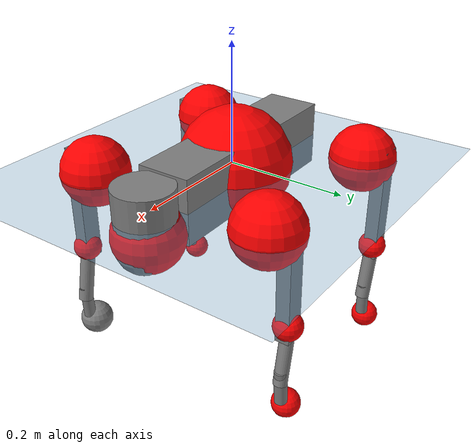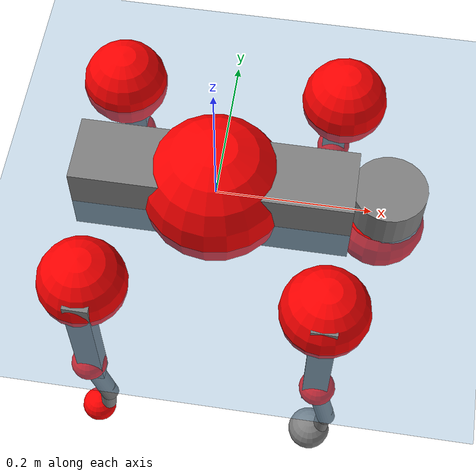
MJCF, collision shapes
<mujoco model="go2">
  <compiler angle="radian" assetdir="assets" balanceinertia="true" inertiafromgeom="false"/>

  <option timestep="0.005" density="1.2" viscosity="2e-05"/>

  <size nkey="1"/>

  <visual>
    <quality shadowsize="8192"/>
    <map shadowclip="0.5"/>
  </visual>

  <default>
    <default class="/">
      <geom contype="0" conaffinity="0" group="1" solref="-1000 -80"/>
      <site size="0.01 0.005 0.005" group="5"/>
      <general forcelimited="true" biastype="affine" gainprm="20" biasprm="0 -20 -0.5"/>
      <default class="go2">
        <joint armature="0.01" damping="0.01" frictionloss="0.2"/>
        <geom condim="1" margin="0.001"/>
        <default class="visual">
          <geom type="mesh" group="2"/>
        </default>
        <default class="collision">
          <geom group="3"/>
          <default class="foot">
            <geom size="0.022 0 0" condim="6" priority="1" friction="0.8 0.02 0.01" solimp="0.015 1 0.022"/>
          </default>
        </default>
        <default class="reward_collision_sphere">
          <geom group="5" rgba="1 0 0 1"/>
        </default>
      </default>
    </default>
  </default>

  <asset>
    <texture type="skybox" colorspace="auto" name="//unnamed_texture_0" builtin="gradient" rgb1="0.95 0.95 0.95" rgb2="0.95 0.95 0.95" width="100" height="600"/>
    <texture type="2d" colorspace="auto" name="texplane" builtin="checker" rgb1="0.345 0.575 0.748" rgb2="0.345 0.575 0.748" markrgb="1 1 1" width="512" height="512"/>
    <material name="MatPlane" class="/" texture="texplane" texuniform="true" texrepeat="2 2" specular="0.9"/>
    <material name="metal" class="/" rgba="0.9 0.95 0.95 1"/>
    <material name="black" class="/" rgba="0 0 0 1"/>
    <material name="white" class="/"/>
    <material name="gray" class="/" rgba="0.671705 0.692426 0.77427 1"/>
    <mesh name="base_0" class="/" file="base_0.obj"/>
    <mesh name="base_1" class="/" file="base_1.obj"/>
    <mesh name="base_2" class="/" file="base_2.obj"/>
    <mesh name="base_3" class="/" file="base_3.obj"/>
    <mesh name="base_4" class="/" file="base_4.obj"/>
    <mesh name="hip_0" class="/" file="hip_0.obj"/>
    <mesh name="hip_1" class="/" file="hip_1.obj"/>
    <mesh name="thigh_0" class="/" file="thigh_0.obj"/>
    <mesh name="thigh_1" class="/" file="thigh_1.obj"/>
    <mesh name="thigh_mirror_0" class="/" file="thigh_mirror_0.obj"/>
    <mesh name="thigh_mirror_1" class="/" file="thigh_mirror_1.obj"/>
    <mesh name="calf_0" class="/" file="calf_0.obj"/>
    <mesh name="calf_1" class="/" file="calf_1.obj"/>
    <mesh name="calf_mirror_0" class="/" file="calf_mirror_0.obj"/>
    <mesh name="calf_mirror_1" class="/" file="calf_mirror_1.obj"/>
    <mesh name="foot" class="/" file="foot.obj"/>
  </asset>

  <worldbody>
    <geom name="floor" class="/" size="100 100 0.125" type="plane" group="0" material="MatPlane"/>
    <light name="toplight_shadow" class="/" pos="0 0 5" dir="0.0990148 0.0990148 -0.990148" type="directional" ambient="0.04 0.04 0.04" diffuse="0.55 0.55 0.55" specular="0.12 0.12 0.12"/>
    <light name="toplight_fill" class="/" pos="0 0 5" dir="0.0990148 0.0990148 -0.990148" type="directional" castshadow="false" ambient="0.04 0.04 0.04" diffuse="0.3 0.3 0.3" specular="0.08 0.08 0.08"/>
    <body name="trunk" childclass="go2" pos="-0.00153798 0.00490462 0.000702485" quat="0.999997 -0.000352324 0.00206437 0.00133217">
      <inertial pos="0.0197576 0.00976784 -0.00917399" quat="-0.000549174 0.701026 -0.00342165 0.713127" mass="6.12369" diaginertia="0.0362152 0.525373 0.00457425"/>
      <joint name="//unnamed_joint_0" type="free" armature="0" damping="0" frictionloss="0"/>
      <geom name="//unnamed_geom_1" class="visual" material="black" mesh="base_0"/>
      <geom name="//unnamed_geom_2" class="visual" material="black" mesh="base_1"/>
      <geom name="//unnamed_geom_3" class="visual" material="black" mesh="base_2"/>
      <geom name="//unnamed_geom_4" class="visual" material="white" mesh="base_3"/>
      <geom name="//unnamed_geom_5" class="visual" material="gray" mesh="base_4"/>
      <geom name="trunk_1" class="collision" size="0.178677 0.044408 0.0541445" type="box"/>
      <geom name="trunk_2" class="collision" size="0.0474952 0.0427457" pos="0.21932 0 0.00712008" type="cylinder"/>
      <geom name="trunk_3" class="collision" size="0.0446455" pos="0.225476 0 -0.0427205"/>
      <geom name="//unnamed_geom_9" class="reward_collision_sphere" size="0.0949904"/>
      <geom name="//unnamed_geom_10" class="reward_collision_sphere" size="0.0569942" pos="0.215472 0 -0.0320404"/>
      <site name="imu" pos="-0.0281094 0.00953661 0.0396748" size="0.00949904"/>
      <camera name="track" pos="0 -2.73632 0" quat="0.707107 0.707107 0 0" mode="trackcom"/>
      <camera name="ego_camera" pos="0.240097 0 0.0320404" quat="-0.5 -0.5 0.5 0.5"/>
      <body name="FL_hip" pos="0.150561 0.0664407 0.00162833" quat="0.999999 0.000827728 -0.000580405 0.000319396">
        <inertial pos="-0.00482217 0.00969414 0.00256575" quat="0.532886 0.466613 0.520536 0.47681" mass="0.598024" diaginertia="0.000234552 0.00296726 8.63243e-05"/>
        <joint name="FL_hip_joint" pos="0 0 0" axis="0.999814 -0.0160051 0.0107309" range="-0.982733 1.02707" armature="0.00904834" damping="0.0226223" frictionloss="0.178733"/>
        <geom name="//unnamed_geom_11" class="visual" material="metal" mesh="hip_0"/>
        <geom name="//unnamed_geom_12" class="visual" material="gray" mesh="hip_1"/>
        <geom name="//unnamed_geom_13" class="collision" size="0.0436956 0.0189981" pos="0 0.109453 0" quat="0.707107 0.707107 0 0" type="cylinder"/>
        <geom name="//unnamed_geom_14" class="reward_collision_sphere" size="0.0569942" pos="0 0.0957711 0"/>
        <body name="FL_thigh" pos="-0.00673164 0.127437 7.79422e-05" quat="0.999987 0.00504596 0.00016257 0.000778784">
          <inertial pos="-0.00498651 -0.0407525 -0.024389" quat="0.825676 0.085514 -0.0259655 0.557021" mass="0.961486" diaginertia="0.00179136 0.0250093 0.000164352"/>
          <joint name="FL_thigh_joint" pos="0 0 0" axis="0.00336089 0.99966 0.0258572" range="-1.46874 3.66587" armature="0.00486727" damping="0.0166325" frictionloss="0.224121"/>
          <geom name="//unnamed_geom_15" class="visual" material="metal" mesh="thigh_0"/>
          <geom name="//unnamed_geom_16" class="visual" material="gray" mesh="thigh_1"/>
          <geom name="//unnamed_geom_17" class="collision" size="0.101165 0.0116363 0.0161484" pos="0 0 -0.0758289" quat="0.707107 0 0.707107 0" type="box"/>
          <body name="FL_calf" pos="0.000301012 0.00079996 -0.154974" quat="1 -0.000701733 0.000264927 -0.000563637">
            <inertial pos="0.0128196 0.00353401 -0.0939795" quat="0.707496 0.000397336 -4.37971e-05 0.706717" mass="0.21537" diaginertia="0.000422117 0.00659854 1.00475e-05"/>
            <joint name="FL_calf_joint" pos="0 0 0" axis="0.0109801 0.999931 0.00414345" range="-2.92858 -0.969146" armature="0.0113286" damping="0.0440458" frictionloss="0.181237"/>
            <geom name="//unnamed_geom_18" class="visual" material="gray" mesh="calf_0"/>
            <geom name="//unnamed_geom_19" class="visual" material="black" mesh="calf_1"/>
            <geom name="FL_calf0" class="collision" size="0.0113988 0.0569942" pos="0.00615635 0 -0.0427205" quat="0.994493 0 -0.104807 0" type="cylinder"/>
            <geom name="//unnamed_geom_21" class="collision" size="0.0104489 0.0308719" pos="0.0153909 0 -0.105377" quat="0.999688 0 0.0249974 0" type="cylinder"/>
            <geom name="//unnamed_geom_22" class="visual" pos="0 0 -0.151658" quat="1 0 0 0" material="black" mesh="foot"/>
            <geom name="FL_foot" class="foot" size="0.0229761" pos="-0.00153909 0 -0.151658"/>
            <geom name="//unnamed_geom_24" class="reward_collision_sphere" size="0.0237476"/>
            <geom name="//unnamed_geom_25" class="reward_collision_sphere" size="0.0237476" pos="-0.00153909 0 -0.151658"/>
            <site name="FL_foot" class="foot" pos="-0.00153909 0 -0.151658" size="0.00949904"/>
          </body>
        </body>
      </body>
      <body name="FR_hip" pos="0.158803 -0.0608124 0.00386163" quat="1 -0.000335725 -0.000306604 1.71773e-05">
        <inertial pos="-0.00540285 -0.00421845 0.0017331" quat="0.521012 0.47718 0.515327 0.485061" mass="0.60454" diaginertia="0.000259921 0.00285422 8.83156e-05"/>
        <joint name="FR_hip_joint" pos="0 0 0" axis="0.999817 0.00153261 0.0190803" stiffness="0.0541434" range="-1.01524 0.89827" armature="0.0104417" damping="0.0274905" frictionloss="0.186414"/>
        <geom name="//unnamed_geom_26" class="visual" pos="0 5.71611e-09 2.45176e-07" quat="4.63268e-05 1 0 0" material="metal" mesh="hip_0"/>
        <geom name="//unnamed_geom_27" class="visual" pos="0 9.2665e-09 -6.06414e-07" quat="4.63268e-05 1 0 0" material="gray" mesh="hip_1"/>
        <geom name="//unnamed_geom_28" class="collision" size="0.0436956 0.0189981" pos="0 -0.109453 0" quat="0.707107 0.707107 0 0" type="cylinder"/>
        <geom name="//unnamed_geom_29" class="reward_collision_sphere" size="0.0569942" pos="0 -0.0957711 0"/>
        <body name="FR_thigh" pos="0.0016675 -0.130809 0.00879241" quat="1 -0.00015736 0.000366975 3.14468e-05">
          <inertial pos="-0.00591516 0.0351101 -0.0320282" quat="0.548724 -0.0148827 0.0846317 0.831576" mass="0.982262" diaginertia="0.00170533 0.0279113 0.00016029"/>
          <joint name="FR_thigh_joint" pos="0 0 0" axis="-0.000716848 -0.999943 -0.0106371" range="-3.52844 1.54653" armature="0.01299" damping="0" frictionloss="0.231016"/>
          <geom name="//unnamed_geom_30" class="visual" material="metal" mesh="thigh_mirror_0"/>
          <geom name="//unnamed_geom_31" class="visual" material="gray" mesh="thigh_mirror_1"/>
          <geom name="//unnamed_geom_32" class="collision" size="0.101165 0.0116363 0.0161484" pos="0 0 -0.0758289" quat="0.707107 0 0.707107 0" type="box"/>
          <body name="FR_calf" pos="0.00259802 -0.000320691 -0.159575" quat="1 -7.90441e-05 0.000203462 -0.000173021">
            <inertial pos="0.00921333 -0.00391374 -0.0994736" quat="0.701538 0.000563644 -0.00671459 0.7126" mass="0.181373" diaginertia="0.000358654 0.00571865 8.93687e-06"/>
            <joint name="FR_calf_joint" pos="0 0 0" axis="-0.00353666 -0.99993 -0.0113232" stiffness="0.0026062" range="0.819108 2.71762" armature="0.00897195" damping="0.0535394" frictionloss="0.20325"/>
            <geom name="//unnamed_geom_33" class="visual" material="gray" mesh="calf_mirror_0"/>
            <geom name="//unnamed_geom_34" class="visual" material="black" mesh="calf_mirror_1"/>
            <geom name="FR_calf0" class="collision" size="0.0123487 0.0569942" pos="0.00769543 0 -0.0427205" quat="0.995004 0 -0.0998334 0" type="cylinder"/>
            <geom name="//unnamed_geom_36" class="collision" size="0.0104489 0.0308719" pos="0.0153909 0 -0.105377" quat="0.999688 0 0.0249974 0" type="cylinder"/>
            <geom name="//unnamed_geom_37" class="visual" pos="0 0 -0.151658" quat="1 0 0 0" material="black" mesh="foot"/>
            <geom name="FR_foot" class="foot" size="0.0287175" pos="-0.00153909 0 -0.151658"/>
            <geom name="//unnamed_geom_39" class="reward_collision_sphere" size="0.0237476"/>
            <geom name="//unnamed_geom_40" class="reward_collision_sphere" size="0.0237476" pos="-0.00153909 0 -0.151658"/>
            <site name="FR_foot" class="foot" pos="-0.00153909 0 -0.151658" size="0.00949904"/>
          </body>
        </body>
      </body>
      <body name="RL_hip" pos="-0.147937 0.0605183 -0.00669861" quat="1 4.5048e-05 1.57246e-07 0.00097397">
        <inertial pos="0.00473532 0.00225727 -0.00434712" quat="0.505429 0.499232 0.496315 0.498979" mass="0.670448" diaginertia="0.000241422 0.00302238 8.55002e-05"/>
        <joint name="RL_hip_joint" pos="0 0 0" axis="-0.999971 -0.00735601 -0.00187326" range="-1.19471 1.07185" armature="0.00930204" damping="0.00288927" frictionloss="0.131057"/>
        <geom name="//unnamed_geom_41" class="visual" pos="-5.01219e-10 0 -9.82504e-08" quat="4.63268e-05 0 1 0" material="metal" mesh="hip_0"/>
        <geom name="//unnamed_geom_42" class="visual" pos="-8.12535e-10 0 -8.71341e-08" quat="4.63268e-05 0 1 0" material="gray" mesh="hip_1"/>
        <geom name="//unnamed_geom_43" class="collision" size="0.0436956 0.0189981" pos="0 0.109453 0" quat="0.707107 0.707107 0 0" type="cylinder"/>
        <geom name="//unnamed_geom_44" class="reward_collision_sphere" size="0.0569942" pos="0 0.0957711 0"/>
        <body name="RL_thigh" pos="-0.000417126 0.133169 -0.000604881" quat="0.99999 -0.00279973 0.00311204 -0.00137728">
          <inertial pos="-0.00199046 -0.0414734 -0.0245075" quat="0.84004 0.059242 -0.015678 0.539052" mass="1.11377" diaginertia="0.00168624 0.0268725 0.00014572"/>
          <joint name="RL_thigh_joint" pos="0 0 0" axis="-0.004571 0.998683 -0.0510925" range="-0.556004 4.49802" armature="0.00721359" damping="0" frictionloss="0.224453"/>
          <geom name="//unnamed_geom_45" class="visual" material="metal" mesh="thigh_0"/>
          <geom name="//unnamed_geom_46" class="visual" material="gray" mesh="thigh_1"/>
          <geom name="//unnamed_geom_47" class="collision" size="0.101165 0.0116363 0.0161484" pos="0 0 -0.0758289" quat="0.707107 0 0.707107 0" type="box"/>
          <body name="RL_calf" pos="0.00284853 -0.00133622 -0.157389" quat="0.999999 0.000847463 0.000282889 -0.00138803">
            <inertial pos="0.00666507 -0.00788468 -0.102425" quat="0.714139 0.00939103 -0.00607524 0.699915" mass="0.211292" diaginertia="0.000435501 0.00761889 1.06324e-05"/>
            <joint name="RL_calf_joint" pos="0 0 0" axis="-0.000769989 0.999999 -0.000721706" range="-2.91962 -0.81172" armature="0.00466402" damping="0" frictionloss="0.233488"/>
            <geom name="//unnamed_geom_48" class="visual" material="gray" mesh="calf_0"/>
            <geom name="//unnamed_geom_49" class="visual" material="black" mesh="calf_1"/>
            <geom name="RL_calf0" class="collision" size="0.0123487 0.0569942" pos="0.00769543 0 -0.0427205" quat="0.995004 0 -0.0998334 0" type="cylinder"/>
            <geom name="//unnamed_geom_51" class="collision" size="0.0104489 0.0308719" pos="0.0153909 0 -0.105377" quat="0.999688 0 0.0249974 0" type="cylinder"/>
            <geom name="//unnamed_geom_52" class="visual" pos="0 0 -0.151658" quat="1 0 0 0" material="black" mesh="foot"/>
            <geom name="RL_foot" class="foot" size="0.0235732" pos="-0.00153909 0 -0.151658"/>
            <geom name="//unnamed_geom_54" class="reward_collision_sphere" size="0.0237476"/>
            <geom name="//unnamed_geom_55" class="reward_collision_sphere" size="0.0237476" pos="-0.00153909 0 -0.151658"/>
            <site name="RL_foot" class="foot" pos="-0.00153909 0 -0.151658" size="0.00949904"/>
          </body>
        </body>
      </body>
      <body name="RR_hip" pos="-0.139114 -0.062321 -0.00011776" quat="0.999985 0.0010657 -0.000701274 -0.00523466">
        <inertial pos="0.00595361 -0.00196613 -0.00136839" quat="0.503867 0.49833 0.496337 0.501432" mass="0.605759" diaginertia="0.000245741 0.00293727 7.86659e-05"/>
        <joint name="RR_hip_joint" pos="0 0 0" axis="-0.999971 0.00690239 -0.00311647" range="-1.05982 0.94632" armature="0.00547598" damping="0.00746904" frictionloss="0.149785"/>
        <geom name="//unnamed_geom_56" class="visual" pos="5.21943e-10 5.71611e-09 -3.43426e-07" quat="2.14617e-09 4.63268e-05 4.63268e-05 -1" material="metal" mesh="hip_0"/>
        <geom name="//unnamed_geom_57" class="visual" pos="7.61276e-10 9.2665e-09 5.1928e-07" quat="2.14617e-09 4.63268e-05 4.63268e-05 -1" material="gray" mesh="hip_1"/>
        <geom name="//unnamed_geom_58" class="collision" size="0.0436956 0.0189981" pos="0 -0.109453 0" quat="0.707107 0.707107 0 0" type="cylinder"/>
        <geom name="//unnamed_geom_59" class="reward_collision_sphere" size="0.0569942" pos="0 -0.0957711 0"/>
        <body name="RR_thigh" pos="0.00508383 -0.137143 0.00106973" quat="1 0.000852376 1.4923e-05 -0.000369805">
          <inertial pos="-0.00289506 0.0365082 -0.0247769" quat="0.546862 -0.0193362 0.0866701 0.8325" mass="0.983647" diaginertia="0.00157887 0.0282697 0.000170954"/>
          <joint name="RR_thigh_joint" pos="0 0 0" axis="0.005545 -0.999964 -0.00643931" range="-4.50025 0.315794" armature="0.0140821" damping="0" frictionloss="0.172268"/>
          <geom name="//unnamed_geom_60" class="visual" material="metal" mesh="thigh_mirror_0"/>
          <geom name="//unnamed_geom_61" class="visual" material="gray" mesh="thigh_mirror_1"/>
          <geom name="//unnamed_geom_62" class="collision" size="0.101165 0.0116363 0.0161484" pos="0 0 -0.0758289" quat="0.707107 0 0.707107 0" type="box"/>
          <body name="RR_calf" pos="-0.00409001 8.25059e-06 -0.153751" quat="1 -4.60982e-05 0.000228861 0.000923774">
            <inertial pos="0.00856879 0.00231267 -0.100054" quat="0.704321 -0.00442573 0.000507801 0.709868" mass="0.193745" diaginertia="0.000399079 0.00675256 9.49174e-06"/>
            <joint name="RR_calf_joint" pos="0 0 0" axis="-0.0124307 -0.999499 -0.0291212" range="0.678534 2.66715" armature="0.00923097" damping="0.00133171" frictionloss="0.156619"/>
            <geom name="//unnamed_geom_63" class="visual" material="gray" mesh="calf_mirror_0"/>
            <geom name="//unnamed_geom_64" class="visual" material="black" mesh="calf_mirror_1"/>
            <geom name="RR_calf0" class="collision" size="0.0123487 0.0569942" pos="0.00769543 0 -0.0427205" quat="0.995004 0 -0.0998334 0" type="cylinder"/>
            <geom name="//unnamed_geom_66" class="collision" size="0.0104489 0.0308719" pos="0.0153909 0 -0.105377" quat="0.999688 0 0.0249974 0" type="cylinder"/>
            <geom name="//unnamed_geom_67" class="visual" pos="0 0 -0.151658" quat="1 0 0 0" material="black" mesh="foot"/>
            <geom name="RR_foot" class="foot" size="0.0125011" pos="-0.00153909 0 -0.151658"/>
            <geom name="//unnamed_geom_69" class="reward_collision_sphere" size="0.0237476"/>
            <geom name="//unnamed_geom_70" class="reward_collision_sphere" size="0.0237476" pos="-0.00153909 0 -0.151658"/>
            <site name="RR_foot" class="foot" pos="-0.00153909 0 -0.151658" size="0.00949904"/>
          </body>
        </body>
      </body>
    </body>
  </worldbody>

  <contact>
    <pair class="/" geom1="floor" geom2="FL_foot" name="//unnamed_contact_0"/>
    <pair class="/" geom1="floor" geom2="FR_foot" name="//unnamed_contact_1"/>
    <pair class="/" geom1="floor" geom2="RL_foot" name="//unnamed_contact_2"/>
    <pair class="/" geom1="floor" geom2="RR_foot" name="//unnamed_contact_3"/>
  </contact>

  <actuator>
    <general name="FL_hip" class="/" joint="FL_hip_joint" forcerange="-20.3278 20.3278" gainprm="18.9313" biasprm="0 -18.9313 -0.49603"/>
    <general name="FL_thigh" class="/" joint="FL_thigh_joint" forcerange="-22.0258 22.0258" gainprm="18.9313" biasprm="0 -18.9313 -0.49603"/>
    <general name="FL_calf" class="/" joint="FL_calf_joint" forcerange="-46.1526 46.1526" gainprm="18.9313" biasprm="0 -18.9313 -0.49603"/>
    <general name="FR_hip" class="/" joint="FR_hip_joint" forcerange="-25.0809 25.0809" gainprm="18.9313" biasprm="0 -18.9313 -0.49603"/>
    <general name="FR_thigh" class="/" joint="FR_thigh_joint" forcerange="-20.876 20.876" gainprm="18.9313" biasprm="0 -18.9313 -0.49603"/>
    <general name="FR_calf" class="/" joint="FR_calf_joint" forcerange="-52.396 52.396" gainprm="18.9313" biasprm="0 -18.9313 -0.49603"/>
    <general name="RL_hip" class="/" joint="RL_hip_joint" forcerange="-23.3286 23.3286" gainprm="18.9313" biasprm="0 -18.9313 -0.49603"/>
    <general name="RL_thigh" class="/" joint="RL_thigh_joint" forcerange="-21.1695 21.1695" gainprm="18.9313" biasprm="0 -18.9313 -0.49603"/>
    <general name="RL_calf" class="/" joint="RL_calf_joint" forcerange="-42.9194 42.9194" gainprm="18.9313" biasprm="0 -18.9313 -0.49603"/>
    <general name="RR_hip" class="/" joint="RR_hip_joint" forcerange="-24.8585 24.8585" gainprm="18.9313" biasprm="0 -18.9313 -0.49603"/>
    <general name="RR_thigh" class="/" joint="RR_thigh_joint" forcerange="-21.2468 21.2468" gainprm="18.9313" biasprm="0 -18.9313 -0.49603"/>
    <general name="RR_calf" class="/" joint="RR_calf_joint" forcerange="-29.7438 29.7438" gainprm="18.9313" biasprm="0 -18.9313 -0.49603"/>
  </actuator>

  <sensor>
    <gyro site="imu" name="imu_angular_velocity"/>
    <velocimeter site="imu" name="imu_linear_velocity"/>
    <framelinvel objtype="site" objname="FL_foot" name="FL_foot_global_linear_velocity"/>
    <framelinvel objtype="site" objname="FR_foot" name="FR_foot_global_linear_velocity"/>
    <framelinvel objtype="site" objname="RL_foot" name="RL_foot_global_linear_velocity"/>
    <framelinvel objtype="site" objname="RR_foot" name="RR_foot_global_linear_velocity"/>
  </sensor>

  <keyframe>
    <key name="home" qpos="0 0 0.325 1 0 0 0 0.1 0.8 -1.5 -0.1 -0.8 1.5 -0.1 0.8 -1.5 0.1 -0.8 1.5"/>
  </keyframe>
</mujoco>
